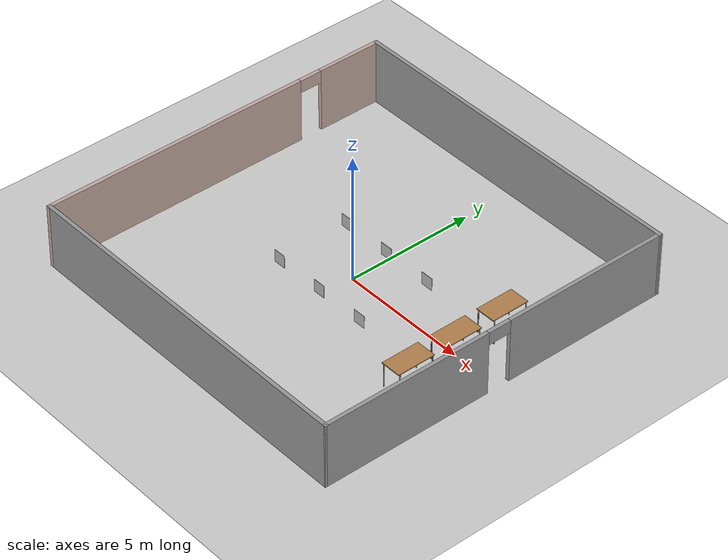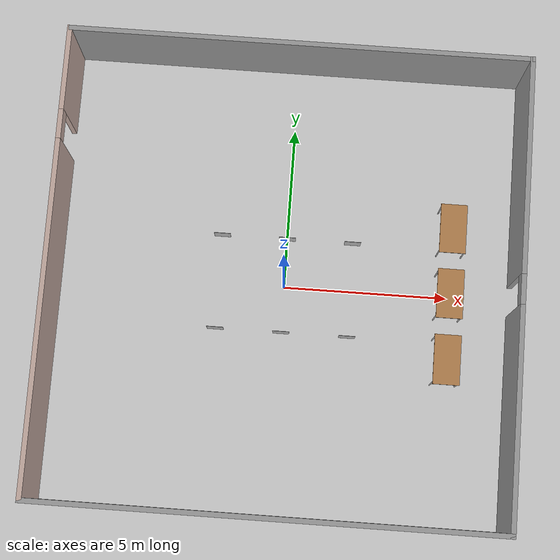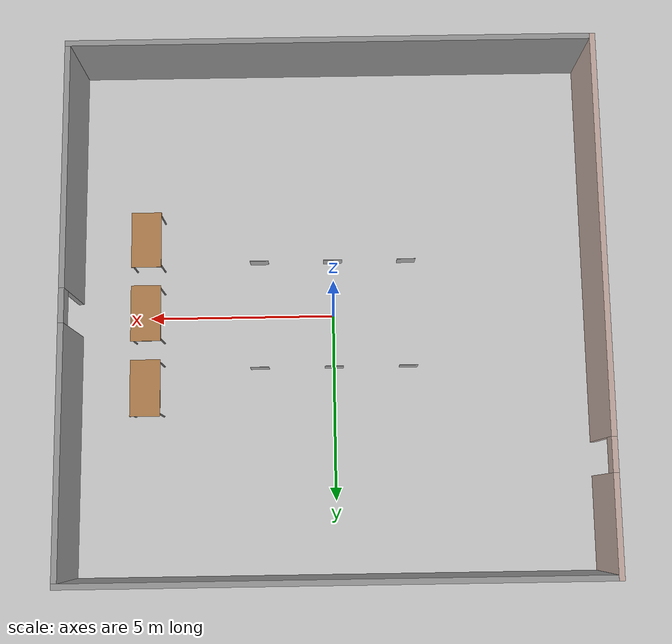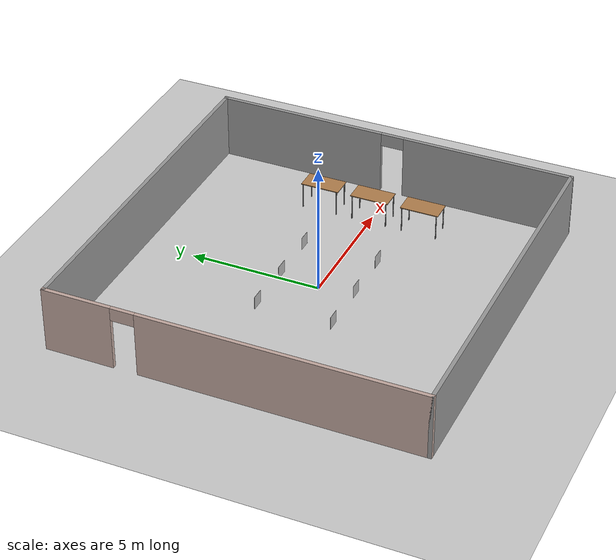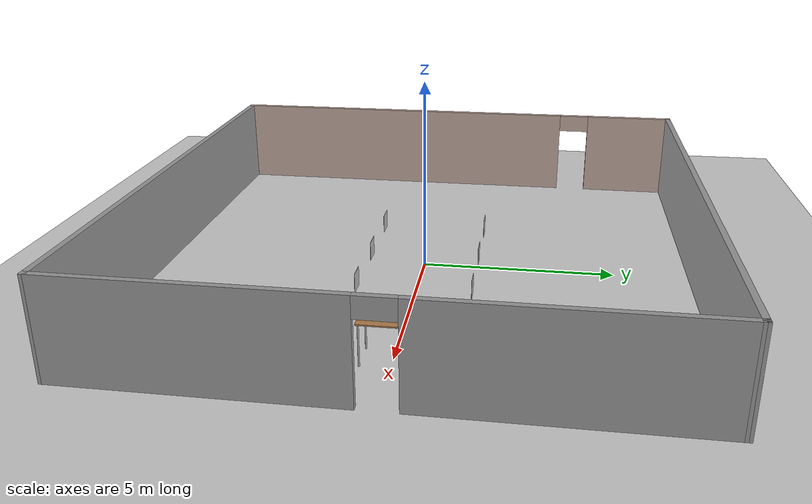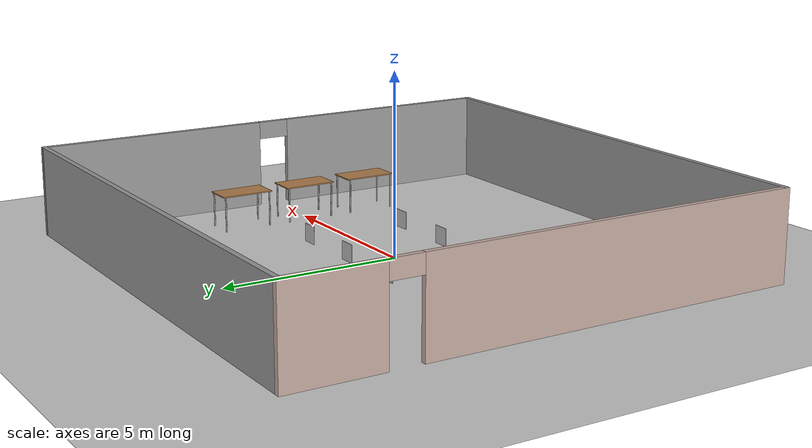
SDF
<sdf version="1.7">
 <world name="default">
  <light name="sun" type="directional">
   <pose>0 0 10 0 -0 0</pose>
   <diffuse>0.8 0.8 0.8 1</diffuse>
   <specular>0.2 0.2 0.2 1</specular>
   <attenuation>
    <range>1000</range>
    <constant>0.9</constant>
    <linear>0.01</linear>
    <quadratic>0.001</quadratic>
   </attenuation>
   <direction>-0.5 0.1 -0.9</direction>
   <spot><inner_angle>0</inner_angle><outer_angle>0</outer_angle><falloff>0</falloff></spot>
  </light>
  <model name="ground_plane">
   <static>1</static>
   <link name="link">
    <collision name="collision">
     <geometry><plane><normal>0 0 1</normal><size>100 100</size></plane></geometry>
     <surface>
      <contact><collide_bitmask>65535</collide_bitmask></contact>
      <friction><ode><mu>100</mu><mu2>50</mu2></ode></friction>
     </surface>
    </collision>
    <visual name="visual">
     <cast_shadows>0</cast_shadows>
     <geometry><plane><normal>0 0 1</normal><size>100 100</size></plane></geometry>
     <material>
      <script><uri>file://media/materials/scripts/gazebo.material</uri><name>Gazebo/Grey</name></script>
     </material>
    </visual>
   </link>
  </model>
  <gravity>0 0 -9.8</gravity>
  <magnetic_field>6e-06 2.3e-05 -4.2e-05</magnetic_field>
  <atmosphere type="adiabatic"/>
  <physics type="ode">
   <max_step_size>0.001</max_step_size>
   <real_time_factor>1</real_time_factor>
   <real_time_update_rate>1000</real_time_update_rate>
  </physics>
  <scene><ambient>0.4 0.4 0.4 1</ambient><background>0.7 0.7 0.7 1</background><shadows>1</shadows></scene>
  <audio><device>default</device></audio>
  <spherical_coordinates>
   <surface_model>EARTH_WGS84</surface_model>
   <latitude_deg>0</latitude_deg>
   <longitude_deg>0</longitude_deg>
   <elevation>0</elevation>
   <heading_deg>0</heading_deg>
  </spherical_coordinates>
  <model name="warehousever3.0">
   <pose>0 0 0 0 -0 1.57</pose>
   <link name="Wall_1">
    <pose>0 6.94511 0 0 -0 0</pose>
    <visual name="Wall_1_Visual_0">
     <pose>-1.7625 0 1.25 0 -0 0</pose>
     <geometry><box><size>10.625 0.15 2.5</size></box></geometry>
     <material>
      <script><uri>file://media/materials/scripts/gazebo.material</uri><name>Gazebo/Grey</name></script>
      <ambient>0.760784 0.662745 0.627451 1</ambient>
     </material>
     <meta><layer>0</layer></meta>
    </visual>
    <collision name="Wall_1_Collision_0">
     <geometry><box><size>10.625 0.15 2.5</size></box></geometry>
     <pose>-1.7625 0 1.25 0 -0 0</pose>
    </collision>
    <visual name="Wall_1_Visual_1">
     <pose>5.7625 0 1.25 0 -0 0</pose>
     <geometry><box><size>2.625 0.15 2.5</size></box></geometry>
     <material>
      <script><uri>file://media/materials/scripts/gazebo.material</uri><name>Gazebo/Grey</name></script>
      <ambient>0.760784 0.662745 0.627451 1</ambient>
     </material>
     <meta><layer>0</layer></meta>
    </visual>
    <collision name="Wall_1_Collision_1">
     <geometry><box><size>2.625 0.15 2.5</size></box></geometry>
     <pose>5.7625 0 1.25 0 -0 0</pose>
    </collision>
    <visual name="Wall_1_Visual_2">
     <pose>4 0 2.25 0 -0 0</pose>
     <geometry><box><size>0.9 0.15 0.5</size></box></geometry>
     <material>
      <script><uri>file://media/materials/scripts/gazebo.material</uri><name>Gazebo/Grey</name></script>
      <ambient>0.760784 0.662745 0.627451 1</ambient>
     </material>
     <meta><layer>0</layer></meta>
    </visual>
    <collision name="Wall_1_Collision_2">
     <geometry><box><size>0.9 0.15 0.5</size></box></geometry>
     <pose>4 0 2.25 0 -0 0</pose>
    </collision>
   </link>
   <link name="Wall_3">
    <collision name="Wall_3_Collision">
     <geometry><box><size>14 0.15 2.5</size></box></geometry>
     <pose>0 0 1.25 0 -0 0</pose>
    </collision>
    <visual name="Wall_3_Visual">
     <pose>0 0 1.25 0 -0 0</pose>
     <geometry><box><size>14 0.15 2.5</size></box></geometry>
     <material>
      <script><uri>file://media/materials/scripts/gazebo.material</uri><name>Gazebo/Grey</name></script>
      <ambient>1 1 1 1</ambient>
     </material>
     <meta><layer>0</layer></meta>
    </visual>
    <pose>-7 0.020107 0 0 -0 -1.5708</pose>
   </link>
   <link name="Wall_5">
    <pose>0 -6.92489 0 0 -0 -0.002857</pose>
    <visual name="Wall_5_Visual_0">
     <pose>-3.75186 0 1.25 0 -0 0</pose>
     <geometry><box><size>6.64628 0.15 2.5</size></box></geometry>
     <material>
      <script><uri>file://media/materials/scripts/gazebo.material</uri><name>Gazebo/Grey</name></script>
      <ambient>1 1 1 1</ambient>
     </material>
     <meta><layer>0</layer></meta>
    </visual>
    <collision name="Wall_5_Collision_0">
     <geometry><box><size>6.64628 0.15 2.5</size></box></geometry>
     <pose>-3.75186 0 1.25 0 -0 0</pose>
    </collision>
    <visual name="Wall_5_Visual_1">
     <pose>3.77314 0 1.25 0 -0 0</pose>
     <geometry><box><size>6.60372 0.15 2.5</size></box></geometry>
     <material>
      <script><uri>file://media/materials/scripts/gazebo.material</uri><name>Gazebo/Grey</name></script>
      <ambient>1 1 1 1</ambient>
     </material>
     <meta><layer>0</layer></meta>
    </visual>
    <collision name="Wall_5_Collision_1">
     <geometry><box><size>6.60372 0.15 2.5</size></box></geometry>
     <pose>3.77314 0 1.25 0 -0 0</pose>
    </collision>
    <visual name="Wall_5_Visual_2">
     <pose>0.021277 0 2.25 0 -0 0</pose>
     <geometry><box><size>0.9 0.15 0.5</size></box></geometry>
     <material>
      <script><uri>file://media/materials/scripts/gazebo.material</uri><name>Gazebo/Grey</name></script>
      <ambient>1 1 1 1</ambient>
     </material>
     <meta><layer>0</layer></meta>
    </visual>
    <collision name="Wall_5_Collision_2">
     <geometry><box><size>0.9 0.15 0.5</size></box></geometry>
     <pose>0.021277 0 2.25 0 -0 0</pose>
    </collision>
   </link>
   <link name="Wall_6">
    <collision name="Wall_6_Collision">
     <geometry><box><size>14 0.15 2.5</size></box></geometry>
     <pose>0 0 1.25 0 -0 0</pose>
    </collision>
    <visual name="Wall_6_Visual">
     <pose>0 0 1.25 0 -0 0</pose>
     <geometry><box><size>14 0.15 2.5</size></box></geometry>
     <material>
      <script><uri>file://media/materials/scripts/gazebo.material</uri><name>Gazebo/Grey</name></script>
      <ambient>1 1 1 1</ambient>
     </material>
     <meta><layer>0</layer></meta>
    </visual>
    <pose>7 -0.019893 0 0 -0 1.5708</pose>
   </link>
   <static>1</static>
  </model>
  <model name="Apriltag36_11_00000">
   <link name="main">
    <pose>0 0 0.3 0 1.57 1.57</pose>
    <visual name="main_Visual">
     <geometry><box><size>0.5 0.5 0.01</size></box></geometry>
     <material>
      <script>
       <uri>model://Apriltag36_11_00000/materials/scripts</uri>
       <uri>model://Apriltag36_11_00000/materials/textures</uri>
       <name>Apriltag36_11_00000</name>
      </script>
     </material>
    </visual>
   </link>
   <static>1</static>
   <pose>0 -1.45 0.1 0 -0 0</pose>
  </model>
  <model name="Apriltag36_11_00001">
   <link name="main">
    <pose>0 0 0.3 0 1.57 1.57</pose>
    <visual name="main_Visual">
     <geometry><box><size>0.5 0.5 0.01</size></box></geometry>
     <material>
      <script>
       <uri>model://Apriltag36_11_00001/materials/scripts</uri>
       <uri>model://Apriltag36_11_00001/materials/textures</uri>
       <name>Apriltag36_11_00001</name>
      </script>
     </material>
    </visual>
   </link>
   <static>1</static>
   <pose>0 1.45 0.1 0 -0 0</pose>
  </model>
  <model name="Apriltag36_11_00003">
   <link name="main">
    <pose>0 0 0.3 0 1.57 1.57</pose>
    <visual name="main_Visual">
     <geometry><box><size>0.5 0.5 0.01</size></box></geometry>
     <material>
      <script>
       <uri>model://Apriltag36_11_00003/materials/scripts</uri>
       <uri>model://Apriltag36_11_00003/materials/textures</uri>
       <name>Apriltag36_11_00003</name>
      </script>
     </material>
    </visual>
   </link>
   <static>1</static>
   <pose>2 -1.45 0.1 0 -0 0</pose>
  </model>
  <model name="Apriltag36_11_00004">
   <link name="main">
    <pose>0 0 0.3 0 1.57 1.57</pose>
    <visual name="main_Visual">
     <geometry><box><size>0.5 0.5 0.01</size></box></geometry>
     <material>
      <script>
       <uri>model://Apriltag36_11_00004/materials/scripts</uri>
       <uri>model://Apriltag36_11_00004/materials/textures</uri>
       <name>Apriltag36_11_00004</name>
      </script>
     </material>
    </visual>
   </link>
   <static>1</static>
   <pose>2 1.45 0.1 0 -0 0</pose>
  </model>
  <model name="Apriltag36_11_00005">
   <link name="main">
    <pose>0 0 0.3 0 1.57 1.57</pose>
    <visual name="main_Visual">
     <geometry><box><size>0.5 0.5 0.01</size></box></geometry>
     <material>
      <script>
       <uri>model://Apriltag36_11_00005/materials/scripts</uri>
       <uri>model://Apriltag36_11_00005/materials/textures</uri>
       <name>Apriltag36_11_00005</name>
      </script>
     </material>
    </visual>
   </link>
   <static>1</static>
   <pose>-2 -1.45 0.1 0 -0 0</pose>
  </model>
  <model name="Apriltag36_11_00006">
   <link name="main">
    <pose>0 0 0.3 0 1.57 1.57</pose>
    <visual name="main_Visual">
     <geometry><box><size>0.5 0.5 0.01</size></box></geometry>
     <material>
      <script>
       <uri>model://Apriltag36_11_00006/materials/scripts</uri>
       <uri>model://Apriltag36_11_00006/materials/textures</uri>
       <name>Apriltag36_11_00006</name>
      </script>
     </material>
    </visual>
   </link>
   <static>1</static>
   <pose>-2 1.45 0.1 0 -0 0</pose>
  </model>
  <model name="table">
   <static>1</static>
   <link name="link">
    <collision name="surface">
     <pose>0 0 1 0 -0 0</pose>
     <geometry><box><size>1.5 0.8 0.03</size></box></geometry>
     <surface><friction><ode><mu>0.6</mu><mu2>0.6</mu2></ode></friction></surface>
    </collision>
    <visual name="visual1">
     <pose>0 0 1 0 -0 0</pose>
     <geometry><box><size>1.5 0.8 0.03</size></box></geometry>
     <material>
      <script><uri>file://media/materials/scripts/gazebo.material</uri><name>Gazebo/Wood</name></script>
     </material>
    </visual>
    <collision name="front_left_leg">
     <pose>0.68 0.38 0.5 0 -0 0</pose>
     <geometry><cylinder><radius>0.02</radius><length>1</length></cylinder></geometry>
    </collision>
    <visual name="front_left_leg">
     <pose>0.68 0.38 0.5 0 -0 0</pose>
     <geometry><cylinder><radius>0.02</radius><length>1</length></cylinder></geometry>
     <material>
      <script><uri>file://media/materials/scripts/gazebo.material</uri><name>Gazebo/Grey</name></script>
     </material>
    </visual>
    <collision name="front_right_leg">
     <pose>0.68 -0.38 0.5 0 -0 0</pose>
     <geometry><cylinder><radius>0.02</radius><length>1</length></cylinder></geometry>
    </collision>
    <visual name="front_right_leg">
     <pose>0.68 -0.38 0.5 0 -0 0</pose>
     <geometry><cylinder><radius>0.02</radius><length>1</length></cylinder></geometry>
     <material>
      <script><uri>file://media/materials/scripts/gazebo.material</uri><name>Gazebo/Grey</name></script>
     </material>
    </visual>
    <collision name="back_right_leg">
     <pose>-0.68 -0.38 0.5 0 -0 0</pose>
     <geometry><cylinder><radius>0.02</radius><length>1</length></cylinder></geometry>
    </collision>
    <visual name="back_right_leg">
     <pose>-0.68 -0.38 0.5 0 -0 0</pose>
     <geometry><cylinder><radius>0.02</radius><length>1</length></cylinder></geometry>
     <material>
      <script><uri>file://media/materials/scripts/gazebo.material</uri><name>Gazebo/Grey</name></script>
     </material>
    </visual>
    <collision name="back_left_leg">
     <pose>-0.68 0.38 0.5 0 -0 0</pose>
     <geometry><cylinder><radius>0.02</radius><length>1</length></cylinder></geometry>
    </collision>
    <visual name="back_left_leg">
     <pose>-0.68 0.38 0.5 0 -0 0</pose>
     <geometry><cylinder><radius>0.02</radius><length>1</length></cylinder></geometry>
     <material>
      <script><uri>file://media/materials/scripts/gazebo.material</uri><name>Gazebo/Grey</name></script>
     </material>
    </visual>
   </link>
   <pose>5 -2 0 0 -0 1.57</pose>
  </model>
  <model name="table_clone">
   <static>1</static>
   <link name="link">
    <collision name="surface">
     <pose>0 0 1 0 -0 0</pose>
     <geometry><box><size>1.5 0.8 0.03</size></box></geometry>
     <surface><friction><ode><mu>0.6</mu><mu2>0.6</mu2></ode></friction></surface>
    </collision>
    <visual name="visual1">
     <pose>0 0 1 0 -0 0</pose>
     <geometry><box><size>1.5 0.8 0.03</size></box></geometry>
     <material>
      <script><uri>file://media/materials/scripts/gazebo.material</uri><name>Gazebo/Wood</name></script>
     </material>
    </visual>
    <collision name="front_left_leg">
     <pose>0.68 0.38 0.5 0 -0 0</pose>
     <geometry><cylinder><radius>0.02</radius><length>1</length></cylinder></geometry>
    </collision>
    <visual name="front_left_leg">
     <pose>0.68 0.38 0.5 0 -0 0</pose>
     <geometry><cylinder><radius>0.02</radius><length>1</length></cylinder></geometry>
     <material>
      <script><uri>file://media/materials/scripts/gazebo.material</uri><name>Gazebo/Grey</name></script>
     </material>
    </visual>
    <collision name="front_right_leg">
     <pose>0.68 -0.38 0.5 0 -0 0</pose>
     <geometry><cylinder><radius>0.02</radius><length>1</length></cylinder></geometry>
    </collision>
    <visual name="front_right_leg">
     <pose>0.68 -0.38 0.5 0 -0 0</pose>
     <geometry><cylinder><radius>0.02</radius><length>1</length></cylinder></geometry>
     <material>
      <script><uri>file://media/materials/scripts/gazebo.material</uri><name>Gazebo/Grey</name></script>
     </material>
    </visual>
    <collision name="back_right_leg">
     <pose>-0.68 -0.38 0.5 0 -0 0</pose>
     <geometry><cylinder><radius>0.02</radius><length>1</length></cylinder></geometry>
    </collision>
    <visual name="back_right_leg">
     <pose>-0.68 -0.38 0.5 0 -0 0</pose>
     <geometry><cylinder><radius>0.02</radius><length>1</length></cylinder></geometry>
     <material>
      <script><uri>file://media/materials/scripts/gazebo.material</uri><name>Gazebo/Grey</name></script>
     </material>
    </visual>
    <collision name="back_left_leg">
     <pose>-0.68 0.38 0.5 0 -0 0</pose>
     <geometry><cylinder><radius>0.02</radius><length>1</length></cylinder></geometry>
    </collision>
    <visual name="back_left_leg">
     <pose>-0.68 0.38 0.5 0 -0 0</pose>
     <geometry><cylinder><radius>0.02</radius><length>1</length></cylinder></geometry>
     <material>
      <script><uri>file://media/materials/scripts/gazebo.material</uri><name>Gazebo/Grey</name></script>
     </material>
    </visual>
   </link>
   <pose>5 0 0 0 -0 1.57</pose>
  </model>
  <model name="table_clone_0">
   <static>1</static>
   <link name="link">
    <collision name="surface">
     <pose>0 0 1 0 -0 0</pose>
     <geometry><box><size>1.5 0.8 0.03</size></box></geometry>
     <surface><friction><ode><mu>0.6</mu><mu2>0.6</mu2></ode></friction></surface>
    </collision>
    <visual name="visual1">
     <pose>0 0 1 0 -0 0</pose>
     <geometry><box><size>1.5 0.8 0.03</size></box></geometry>
     <material>
      <script><uri>file://media/materials/scripts/gazebo.material</uri><name>Gazebo/Wood</name></script>
     </material>
    </visual>
    <collision name="front_left_leg">
     <pose>0.68 0.38 0.5 0 -0 0</pose>
     <geometry><cylinder><radius>0.02</radius><length>1</length></cylinder></geometry>
    </collision>
    <visual name="front_left_leg">
     <pose>0.68 0.38 0.5 0 -0 0</pose>
     <geometry><cylinder><radius>0.02</radius><length>1</length></cylinder></geometry>
     <material>
      <script><uri>file://media/materials/scripts/gazebo.material</uri><name>Gazebo/Grey</name></script>
     </material>
    </visual>
    <collision name="front_right_leg">
     <pose>0.68 -0.38 0.5 0 -0 0</pose>
     <geometry><cylinder><radius>0.02</radius><length>1</length></cylinder></geometry>
    </collision>
    <visual name="front_right_leg">
     <pose>0.68 -0.38 0.5 0 -0 0</pose>
     <geometry><cylinder><radius>0.02</radius><length>1</length></cylinder></geometry>
     <material>
      <script><uri>file://media/materials/scripts/gazebo.material</uri><name>Gazebo/Grey</name></script>
     </material>
    </visual>
    <collision name="back_right_leg">
     <pose>-0.68 -0.38 0.5 0 -0 0</pose>
     <geometry><cylinder><radius>0.02</radius><length>1</length></cylinder></geometry>
    </collision>
    <visual name="back_right_leg">
     <pose>-0.68 -0.38 0.5 0 -0 0</pose>
     <geometry><cylinder><radius>0.02</radius><length>1</length></cylinder></geometry>
     <material>
      <script><uri>file://media/materials/scripts/gazebo.material</uri><name>Gazebo/Grey</name></script>
     </material>
    </visual>
    <collision name="back_left_leg">
     <pose>-0.68 0.38 0.5 0 -0 0</pose>
     <geometry><cylinder><radius>0.02</radius><length>1</length></cylinder></geometry>
    </collision>
    <visual name="back_left_leg">
     <pose>-0.68 0.38 0.5 0 -0 0</pose>
     <geometry><cylinder><radius>0.02</radius><length>1</length></cylinder></geometry>
     <material>
      <script><uri>file://media/materials/scripts/gazebo.material</uri><name>Gazebo/Grey</name></script>
     </material>
    </visual>
   </link>
   <pose>5 2 0 0 -0 1.57</pose>
  </model>
 </world>
</sdf>
